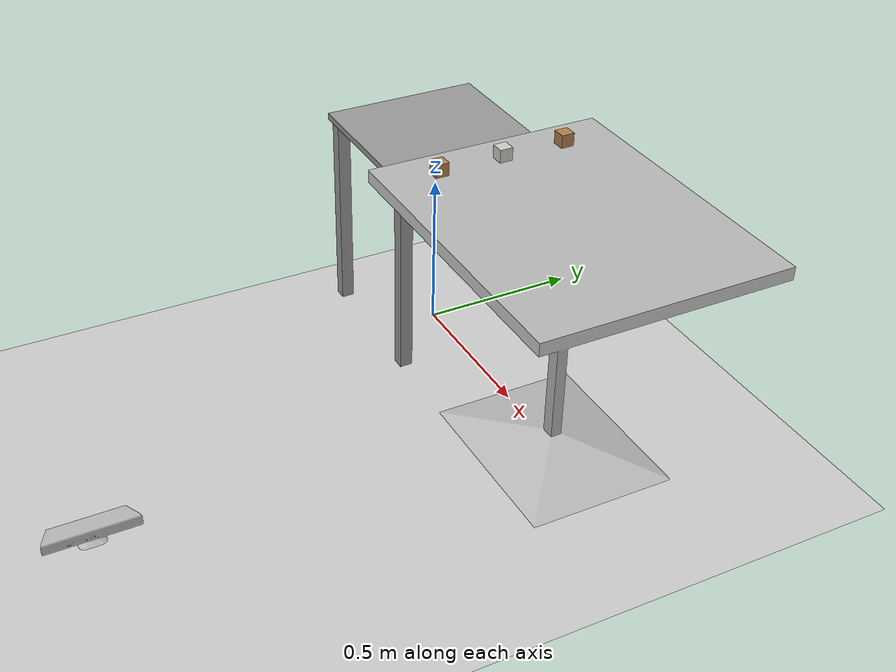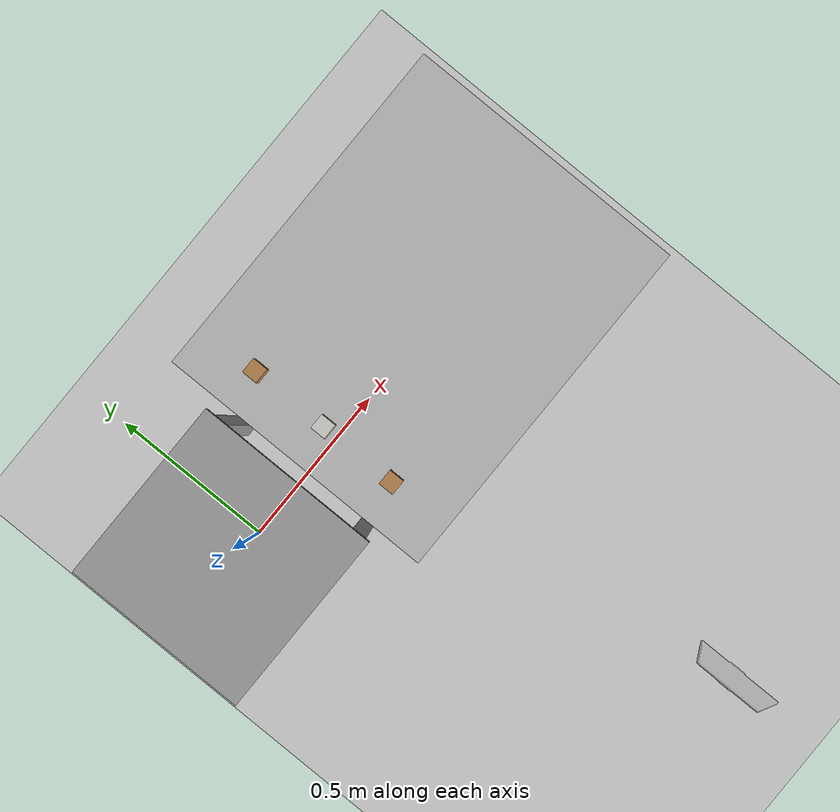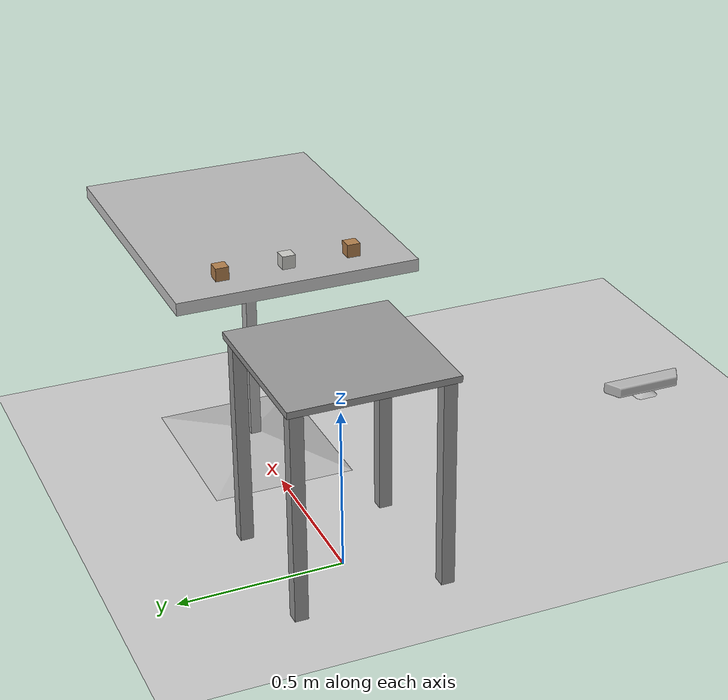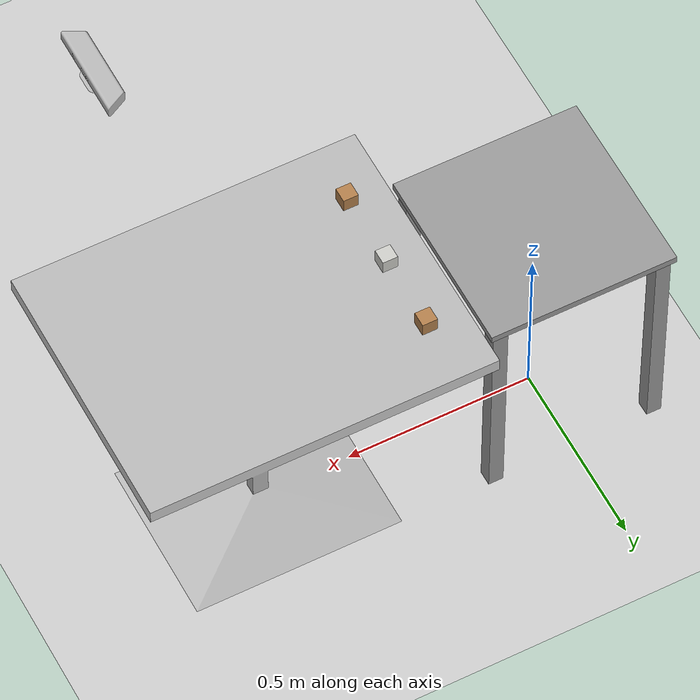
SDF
<?xml version="1.0" ?>

<sdf version="1.6">

  <world name="ur5_cubes">

    <gui>
      <camera name='user_camera'>
        <pose frame=''>1.28552 1.43709 1.77307 0 0.43 -1.99519</pose>
        <view_controller>orbit</view_controller>
        <projection_type>perspective</projection_type>
      </camera>
    </gui>

    <gravity>0 0 -9.81</gravity>

    <physics name="default_physics" default="0" type="ode">
      <max_step_size>0.001</max_step_size>
      <real_time_factor>1</real_time_factor>
      <real_time_update_rate>1000</real_time_update_rate>
    </physics>

    <!-- A gazebo links attacher -->
    <plugin name="ros_link_attacher_plugin" filename="libgazebo_ros_link_attacher.so"/>

    <scene>
      <ambient>0.4 0.4 0.4 1</ambient>
      <background>0.40 0.43 0.67 1</background>
      <shadows>1</shadows>
    </scene>

    <!-- Light Source -->
    <include>
      <uri>model://sun</uri>
    </include>

    <!-- A ground plane -->
    <include>
      <uri>model://ground_plane</uri>
      <pose>0 0 0 0 0 0</pose>
    </include>

    <!-- A gazebo links attacher -->

    <!-- The robot base -->
    <model name="ur_base">
      <include>
        <uri>model://ur_base</uri>
        <pose>0 0 0 0 0 0</pose>
      </include>
    </model>
    <!--Camera-->
    <model name='kinect'>
      <pose>0.570216 -1.31305 0.036 0 -0 0</pose>
      <link name='link'>
        <inertial>
          <mass>0.1</mass>
          <pose>0 0 0 0 -0 0</pose>
          <inertia>
            <ixx>1</ixx>
            <ixy>0</ixy>
            <ixz>0</ixz>
            <iyy>1</iyy>
            <iyz>0</iyz>
            <izz>1</izz>
          </inertia>
        </inertial>
        <collision name='collision'>
          <geometry>
            <box>
              <size>0.073 0.276 0.072</size>
            </box>
          </geometry>
          <max_contacts>10</max_contacts>
          <surface>
            <contact>
              <ode/>
            </contact>
            <bounce/>
            <friction>
              <torsional>
                <ode/>
              </torsional>
              <ode/>
            </friction>
          </surface>
        </collision>
        <visual name='visual'>
          <geometry>
            <mesh>
              <uri>model://kinect/meshes/kinect.dae</uri>
            </mesh>
          </geometry>
        </visual>
        <sensor name='camera' type='depth'>
          <update_rate>20</update_rate>
          <camera>
            <horizontal_fov>1.0472</horizontal_fov>
            <image>
              <width>640</width>
              <height>480</height>
              <format>R8G8B8</format>
            </image>
            <clip>
              <near>0.05</near>
              <far>3</far>
            </clip>
          </camera>
          <plugin name='camera_plugin' filename='libgazebo_ros_openni_kinect.so'>
            <baseline>0.2</baseline>
            <alwaysOn>1</alwaysOn>
            <updateRate>0.0</updateRate>
            <cameraName>camera_ir</cameraName>
            <imageTopicName>/camera/color/image_raw</imageTopicName>
            <cameraInfoTopicName>/camera/color/camera_info</cameraInfoTopicName>
            <depthImageTopicName>/camera/depth/image_raw</depthImageTopicName>
            <depthImageCameraInfoTopicName>/camera/depth/camera_info</depthImageCameraInfoTopicName>
            <pointCloudTopicName>/camera/depth/points</pointCloudTopicName>
            <frameName>world</frameName>
            <pointCloudCutoff>0.5</pointCloudCutoff>
            <pointCloudCutoffMax>3.0</pointCloudCutoffMax>
            <distortionK1>0</distortionK1>
            <distortionK2>0</distortionK2>
            <distortionK3>0</distortionK3>
            <distortionT1>0</distortionT1>
            <distortionT2>0</distortionT2>
            <CxPrime>0</CxPrime>
            <Cx>0</Cx>
            <Cy>0</Cy>
            <focalLength>0</focalLength>
            <hackBaseline>0</hackBaseline>
          </plugin>
        </sensor>
        <self_collide>0</self_collide>
        <enable_wind>0</enable_wind>
        <kinematic>0</kinematic>
      </link>
    </model>

    <!-- Table -->
    <!-- Table top is at (x,y,z) = (0.7, 0, 0.775) -->
    <!-- Table top size is 0.9x0.9 -->
    <model name='cafe_table'>
      <link name='cafe_table::link'>
        <pose frame=''>0.75 0 0 0 -0 0</pose>
        <self_collide>0</self_collide>
        <kinematic>0</kinematic>
        <gravity>1</gravity>
        <inertial>
          <mass>1</mass>
          <pose frame=''>0 0 0 0 -0 0</pose>
          <inertia>
            <ixx>1</ixx>
            <ixy>0</ixy>
            <ixz>0</ixz>
            <iyy>1</iyy>
            <iyz>0</iyz>
            <izz>1</izz>
          </inertia>
        </inertial>
        <visual name='visual'>
          <geometry>
            <mesh>
              <uri>model://cafe_table/meshes/cafe_table.dae</uri>
              <scale>1 0.8 1</scale>
            </mesh>
          </geometry>
          <material>
            <shader type='pixel'>
              <normal_map>__default__</normal_map>
            </shader>
          </material>
          <pose frame=''>0 0 0 0 -0 0</pose>
          <cast_shadows>1</cast_shadows>
          <transparency>0</transparency>
        </visual>
        <collision name='surface'>
          <laser_retro>0</laser_retro>
          <max_contacts>10</max_contacts>
          <pose frame=''>0 0 0.755 0 -0 0</pose>
          <geometry>
            <box>
              <size>0.913 0.913 0.04</size>
            </box>
          </geometry>
          <surface>
            <friction>
              <ode>
                <mu>1</mu>
                <mu2>1</mu2>
                <fdir1>0 0 0</fdir1>
                <slip1>0</slip1>
                <slip2>0</slip2>
              </ode>
              <torsional>
                <coefficient>1</coefficient>
                <patch_radius>0</patch_radius>
                <surface_radius>0</surface_radius>
                <use_patch_radius>1</use_patch_radius>
                <ode>
                  <slip>0</slip>
                </ode>
              </torsional>
            </friction>
            <bounce>
              <restitution_coefficient>0</restitution_coefficient>
              <threshold>1e+06</threshold>
            </bounce>
            <contact>
              <collide_without_contact>0</collide_without_contact>
              <collide_without_contact_bitmask>1</collide_without_contact_bitmask>
              <collide_bitmask>1</collide_bitmask>
              <ode>
                <soft_cfm>0</soft_cfm>
                <soft_erp>0.2</soft_erp>
                <kp>1e+13</kp>
                <kd>1</kd>
                <max_vel>0.01</max_vel>
                <min_depth>0</min_depth>
              </ode>
              <bullet>
                <split_impulse>1</split_impulse>
                <split_impulse_penetration_threshold>-0.01</split_impulse_penetration_threshold>
                <soft_cfm>0</soft_cfm>
                <soft_erp>0.2</soft_erp>
                <kp>1e+13</kp>
                <kd>1</kd>
              </bullet>
            </contact>
          </surface>
        </collision>
        <collision name='column'>
          <laser_retro>0</laser_retro>
          <max_contacts>10</max_contacts>
          <pose frame=''>0 0 0.37 0 -0 0</pose>
          <geometry>
            <box>
              <size>0.042 0.042 0.74</size>
            </box>
          </geometry>
          <surface>
            <friction>
              <ode>
                <mu>1</mu>
                <mu2>1</mu2>
                <fdir1>0 0 0</fdir1>
                <slip1>0</slip1>
                <slip2>0</slip2>
              </ode>
              <torsional>
                <coefficient>1</coefficient>
                <patch_radius>0</patch_radius>
                <surface_radius>0</surface_radius>
                <use_patch_radius>1</use_patch_radius>
                <ode>
                  <slip>0</slip>
                </ode>
              </torsional>
            </friction>
            <bounce>
              <restitution_coefficient>0</restitution_coefficient>
              <threshold>1e+06</threshold>
            </bounce>
            <contact>
              <collide_without_contact>0</collide_without_contact>
              <collide_without_contact_bitmask>1</collide_without_contact_bitmask>
              <collide_bitmask>1</collide_bitmask>
              <ode>
                <soft_cfm>0</soft_cfm>
                <soft_erp>0.2</soft_erp>
                <kp>1e+13</kp>
                <kd>1</kd>
                <max_vel>0.01</max_vel>
                <min_depth>0</min_depth>
              </ode>
              <bullet>
                <split_impulse>1</split_impulse>
                <split_impulse_penetration_threshold>-0.01</split_impulse_penetration_threshold>
                <soft_cfm>0</soft_cfm>
                <soft_erp>0.2</soft_erp>
                <kp>1e+13</kp>
                <kd>1</kd>
              </bullet>
            </contact>
          </surface>
        </collision>
        <collision name='base'>
          <laser_retro>0</laser_retro>
          <max_contacts>10</max_contacts>
          <pose frame=''>0 0 0.02 0 -0 0</pose>
          <geometry>
            <box>
              <size>0.56 0.56 0.04</size>
            </box>
          </geometry>
          <surface>
            <friction>
              <ode>
                <mu>1</mu>
                <mu2>1</mu2>
                <fdir1>0 0 0</fdir1>
                <slip1>0</slip1>
                <slip2>0</slip2>
              </ode>
              <torsional>
                <coefficient>1</coefficient>
                <patch_radius>0</patch_radius>
                <surface_radius>0</surface_radius>
                <use_patch_radius>1</use_patch_radius>
                <ode>
                  <slip>0</slip>
                </ode>
              </torsional>
            </friction>
            <bounce>
              <restitution_coefficient>0</restitution_coefficient>
              <threshold>1e+06</threshold>
            </bounce>
            <contact>
              <collide_without_contact>0</collide_without_contact>
              <collide_without_contact_bitmask>1</collide_without_contact_bitmask>
              <collide_bitmask>1</collide_bitmask>
              <ode>
                <soft_cfm>0</soft_cfm>
                <soft_erp>0.2</soft_erp>
                <kp>1e+13</kp>
                <kd>1</kd>
                <max_vel>0.01</max_vel>
                <min_depth>0</min_depth>
              </ode>
              <bullet>
                <split_impulse>1</split_impulse>
                <split_impulse_penetration_threshold>-0.01</split_impulse_penetration_threshold>
                <soft_cfm>0</soft_cfm>
                <soft_erp>0.2</soft_erp>
                <kp>1e+13</kp>
                <kd>1</kd>
              </bullet>
            </contact>
          </surface>
        </collision>
      </link>
      <static>1</static>
      <allow_auto_disable>1</allow_auto_disable>
      <pose frame=''>0 0 0 0 -0 0</pose>
    </model>

    <!-- Cubes -->
    <model name="cube1">
      <pose>0.4 -0.2 0.775 0 0 0</pose>
      <link name="link">
        <pose>0 0 0.02 0 0 0</pose>
        <inertial>
          <mass>0.0565</mass>
          <inertia>
            <ixx>2.3541666666666672e-05</ixx>
            <ixy>0</ixy>
            <ixz>0</ixz>
            <iyy>2.3541666666666672e-05</iyy>
            <iyz>0</iyz>
            <izz>2.3541666666666672e-05</izz>
          </inertia>
        </inertial>
        <collision name="collision">
          <geometry>
            <box>
              <size>0.04 0.04 0.04</size>
            </box>
          </geometry>
          <surface>
            <contact>
              <poissons_ratio>0.347</poissons_ratio>
              <elastic_modulus>8.8e+09</elastic_modulus>
              <ode>
                <kp>100000</kp>
                <kd>1</kd>
                <max_vel>1.0</max_vel>
                <min_depth>0.001</min_depth>
              </ode>
            </contact>
            <friction>
              <torsional>
                <coefficient>1.0</coefficient>
                <use_patch_radius>0</use_patch_radius>
                <surface_radius>0.05</surface_radius>
              </torsional>
            </friction>
          </surface>
        </collision>
        <visual name="visual">
          <geometry>
            <box>
              <size>0.04 0.04 0.04</size>
            </box>
          </geometry>
          <material>
            <script>
              <uri>model://media/materials/scripts/gazebo.material</uri>
              <name>Gazebo/Wood</name>
            </script>
          </material>
        </visual>
      </link>
    </model>

    <model name="cube2">
      <pose>0.4 0 0.775 0 0 0</pose>
      <link name="link">
        <pose>0 0 0.02 0 0 0</pose>
        <inertial>
          <mass>0.0565</mass>
          <inertia>
            <ixx>2.3541666666666672e-05</ixx>
            <ixy>0</ixy>
            <ixz>0</ixz>
            <iyy>2.3541666666666672e-05</iyy>
            <iyz>0</iyz>
            <izz>2.3541666666666672e-05</izz>
          </inertia>
        </inertial>
        <collision name="collision">
          <geometry>
            <box>
              <size>0.04 0.04 0.04</size>
            </box>
          </geometry>
          <surface>
            <contact>
              <poissons_ratio>0.347</poissons_ratio>
              <elastic_modulus>8.8e+09</elastic_modulus>
              <ode>
                <kp>100000</kp>
                <kd>1</kd>
                <max_vel>1.0</max_vel>
                <min_depth>0.001</min_depth>
              </ode>
            </contact>
            <friction>
              <torsional>
                <coefficient>1.0</coefficient>
                <use_patch_radius>0</use_patch_radius>
                <surface_radius>0.05</surface_radius>
              </torsional>
            </friction>
          </surface>
        </collision>
        <visual name="visual">
          <geometry>
            <box>
              <size>0.04 0.04 0.04</size>
            </box>
          </geometry>
          <material>
            <script>
              <uri>model://media/materials/scripts/gazebo.material</uri>
              <name>CeilingTiled</name>
            </script>
          </material>
        </visual>
      </link>
    </model>

    <model name="cube3">
      <pose>0.4 0.2 0.775 0 0 0</pose>
      <link name="link">
        <pose>0 0 0.02 0 0 0</pose>
        <inertial>
          <mass>0.0565</mass>
          <inertia>
            <ixx>2.3541666666666672e-05</ixx>
            <ixy>0</ixy>
            <ixz>0</ixz>
            <iyy>2.3541666666666672e-05</iyy>
            <iyz>0</iyz>
            <izz>2.3541666666666672e-05</izz>
          </inertia>
        </inertial>
        <collision name="collision">
          <geometry>
            <box>
              <size>0.04 0.04 0.04</size>
            </box>
          </geometry>
          <surface>
            <contact>
              <poissons_ratio>0.347</poissons_ratio>
              <elastic_modulus>8.8e+09</elastic_modulus>
              <ode>
                <kp>100000</kp>
                <kd>1</kd>
                <max_vel>1.0</max_vel>
                <min_depth>0.001</min_depth>
              </ode>
            </contact>
            <friction>
              <torsional>
                <coefficient>1.0</coefficient>
                <use_patch_radius>0</use_patch_radius>
                <surface_radius>0.05</surface_radius>
              </torsional>
            </friction>
          </surface>
        </collision>
        <visual name="visual">
          <geometry>
            <box>
              <size>0.04 0.04 0.04</size>
            </box>
          </geometry>
          <material>
            <script>
              <uri>model://media/materials/scripts/gazebo.material</uri>
              <name>Gazebo/WoodPallet</name>
            </script>
          </material>
        </visual>
      </link>
    </model>

  </world>

</sdf>

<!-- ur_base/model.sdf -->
<sdf version="1.6">
  <model name="ur_base">
    <static>true</static>

    <link name="top_plate">
      <pose>0 0 0.67501 0 0 0</pose>
      <collision name="top_plate_collision">
        <geometry>
          <box>
            <size>0.5 0.5 0.02</size>
          </box>
        </geometry>
        <surface>
          <contact>
            <collide_bitmask>0x01</collide_bitmask>
          </contact>
        </surface>
      </collision>
      <visual name="top_plate_visual">
        <geometry>
          <box>
            <size>0.5 0.5 0.02</size>
          </box>
        </geometry>
        <material>
          <script>
            <uri>file://media/materials/scripts/gazebo.material</uri>
            <name>Gazebo/Grey</name>
          </script>
        </material>
      </visual>
    </link>
    <link name="leg1">
      <pose>0.22 0.22 0.35 0 0 0</pose>
      <visual name="leg1_visual">
        <geometry>
          <box>
            <size>0.04 0.04 0.655</size>
          </box>
        </geometry>
        <material>
          <script>
            <uri>file://media/materials/scripts/gazebo.material</uri>
            <name>Gazebo/Grey</name>
          </script>
        </material>
      </visual>
    </link>
    <link name="leg2">
      <pose>-0.22 0.22 0.35 0 0 0</pose>
      <visual name="leg2_visual">
        <geometry>
          <box>
            <size>0.04 0.04 0.655</size>
          </box>
        </geometry>
        <material>
          <script>
            <uri>file://media/materials/scripts/gazebo.material</uri>
            <name>Gazebo/Grey</name>
          </script>
        </material>
      </visual>
    </link>
    <link name="leg3">
      <pose>0.22 -0.22 0.35 0 0 0</pose>
      <visual name="leg3_visual">
        <geometry>
          <box>
            <size>0.04 0.04 0.655</size>
          </box>
        </geometry>
        <material>
          <script>
            <uri>file://media/materials/scripts/gazebo.material</uri>
            <name>Gazebo/Grey</name>
          </script>
        </material>
      </visual>
    </link>
    <link name="leg4">
      <pose>-0.22 -0.22 0.35 0 0 0</pose>
      <visual name="leg4_visual">
        <geometry>
          <box>
            <size>0.04 0.04 0.655</size>
          </box>
        </geometry>
        <material>
          <script>
            <uri>file://media/materials/scripts/gazebo.material</uri>
            <name>Gazebo/Grey</name>
          </script>
        </material>
      </visual>
    </link>
  </model>
</sdf>
